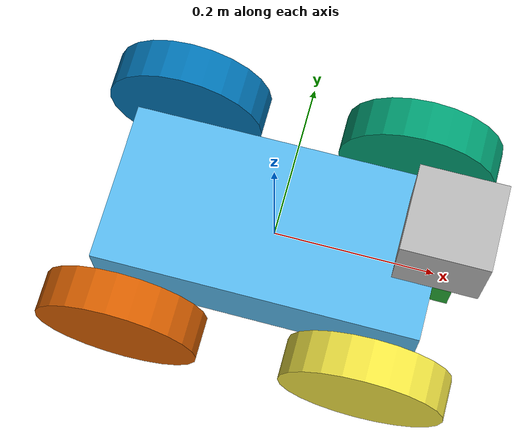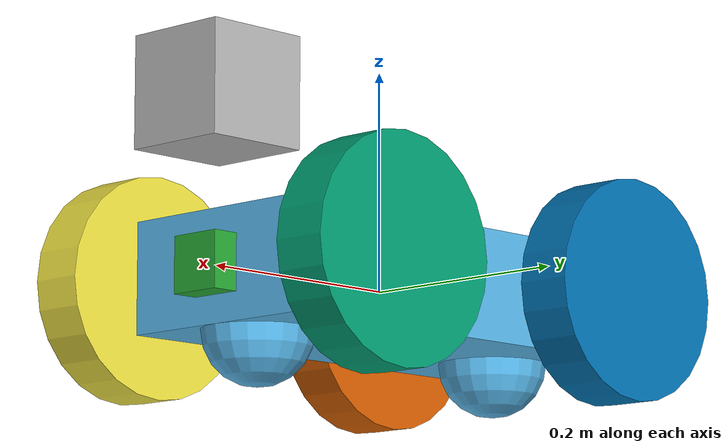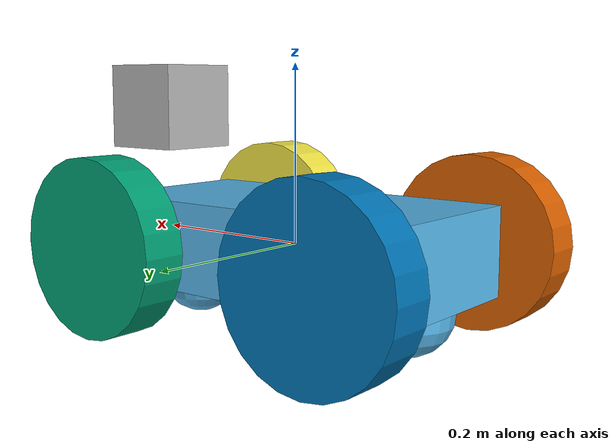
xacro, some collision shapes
<?xml version='1.0'?>
<robot name="udacity_bot_four_wheel"
  xmlns:xacro="http://www.ros.org/wiki/xacro">
  <xacro:include filename="$(find udacity_bot)/urdf/udacity_bot.gazebo" />
  <link name="robot_footprint"></link>
  <joint name="robot_footprint_joint" type="fixed">
    <origin xyz="0 0 0" rpy="0 0 0" />
    <parent link="robot_footprint"/>
    <child link="chassis" />
  </joint>
  <link name='chassis'>
    <pose>0 0 0.1 0 0 0</pose>
    <inertial>
      <mass value="50.0"/>
      <origin xyz="0.0 0 0" rpy=" 0 0 0"/>
      <inertia ixx="0.1" ixy="0" ixz="0" iyy="0.1" iyz="0" izz="0.1" />
    </inertial>
    <collision name='collision'>
      <origin xyz="0 0 0" rpy=" 0 0 0"/>
      <geometry>
        <box size=".4 .2 .1"/>
      </geometry>
    </collision>
    <visual name='chassis_visual'>
      <origin xyz="0 0 0" rpy=" 0 0 0"/>
      <geometry>
        <box size=".4 .2 .1"/>
      </geometry>
    </visual>
    <collision name='back_caster_collision'>
      <origin xyz="-0.15 0 -0.05" rpy=" 0 0 0"/>
      <geometry>
        <sphere radius="0.049"/>
      </geometry>
      <surface>
        <friction>
          <ode>
            <mu>0.1</mu>
            <mu2>0.1</mu2>
            <slip1>0.</slip1>
            <slip2>0.</slip2>
          </ode>
        </friction>
      </surface>
    </collision>
    <visual name='back_caster_visual'>
      <origin xyz="-0.15 0 -0.05" rpy=" 0 0 0"/>
      <geometry>
        <sphere radius="0.05"/>
      </geometry>
    </visual>
    <collision name='front_caster_collision'>
      <origin xyz="0.15 0 -0.05" rpy=" 0 0 0"/>
      <geometry>
        <sphere radius="0.049"/>
      </geometry>
      <surface>
        <friction>
          <ode>
            <mu>0.1</mu>
            <mu2>0.1</mu2>
            <slip1>0.0</slip1>
            <slip2>0.0</slip2>

          </ode>
        </friction>
      </surface>
    </collision>
    <visual name='front_caster_visual'>
      <origin xyz="0.15 0.0 -0.05" rpy=" 0 0 0"/>
      <geometry>
        <sphere radius="0.05"/>
      </geometry>
    </visual>
  </link>
  <link name="front_left_wheel">
    <inertial>
      <origin xyz="0.0 0.0 0.0" rpy="0.0 1.5707 1.5707" />
      <mass value="5.0"/>
      <inertia ixx="0.1" ixy="0" ixz="0" iyy="0.1" iyz="0" izz="0.1" />
    </inertial>
    <collision name='collision'>
      <origin xyz="0.0 0.0 0.0" rpy=" 0 1.5707 1.5707"/>
      <geometry>
        <cylinder radius="0.1" length="0.05"/>
      </geometry>
    </collision>
    <visual name="lef_wheel_visual">
      <origin xyz="0.0 0.0 0.0" rpy="0 1.5707 1.5707" />
      <geometry>
        <cylinder radius="0.1" length="0.05"/>
      </geometry>
    </visual>
  </link>
  <joint type="continuous" name="front_left_wheel_hinge">
    <origin xyz="0.15 0.15 0.0" rpy="0 0 0"/>
    <child link="front_left_wheel"/>
    <parent link="chassis"/>
    <axis xyz="0 1 0" rpy="0 0 0"/>
    <limit effort="10000" velocity="1000"/>
    <!-- increased damping to reduce the osscilations when robot stops getting acceleration -->
    <joint_properties damping="10.0" friction="1.0"/>
  </joint>
  <link name="front_right_wheel">
    <inertial>
      <origin xyz="0.0 0.0 0.0" rpy="0.0 1.5707 1.5707" />
      <mass value="5.0"/>
      <inertia ixx="0.1" ixy="0" ixz="0" iyy="0.1" iyz="0" izz="0.1" />
    </inertial>
    <collision name='collision'>
      <origin xyz="0.0 0.0 0.0" rpy=" 0 1.5707 1.5707"/>
      <geometry>
        <cylinder radius="0.1" length="0.05"/>
      </geometry>
    </collision>
    <visual name="right_wheel_visual">
      <origin xyz="0.0 0.0 0.0" rpy="0 1.5707 1.5707" />
      <geometry>
        <cylinder radius="0.1" length="0.05"/>
      </geometry>
    </visual>
  </link>
  <joint type="continuous" name="front_right_wheel_hinge">
    <origin xyz="0.15 -0.15 0.0" rpy="0 0 0"/>
    <child link="front_right_wheel"/>
    <parent link="chassis"/>
    <axis xyz="0 1 0" rpy="0 0 0"/>
    <limit effort="10000" velocity="1000"/>
    <!-- increased damping to reduce the osscilations when robot stops getting acceleration -->
    <joint_properties damping="10.0" friction="1.0"/>
  </joint>

  <link name="back_left_wheel">
    <inertial>
      <origin xyz="0.0 0.0 0.0" rpy="0.0 1.5707 1.5707" />
      <mass value="5.0"/>
      <inertia ixx="0.1" ixy="0" ixz="0" iyy="0.1" iyz="0" izz="0.1" />
    </inertial>
    <collision name='collision'>
      <origin xyz="0.0 0.0 0.0" rpy=" 0 1.5707 1.5707"/>
      <geometry>
        <cylinder radius="0.1" length="0.05"/>
      </geometry>
    </collision>
    <visual name="lef_wheel_visual">
      <origin xyz="0.0 0.0 0.0" rpy="0 1.5707 1.5707" />
      <geometry>
        <cylinder radius="0.1" length="0.05"/>
      </geometry>
    </visual>
  </link>
  <joint type="continuous" name="back_left_wheel_hinge">
    <origin xyz="-0.15 0.15 0.0" rpy="0 0 0"/>
    <child link="back_left_wheel"/>
    <parent link="chassis"/>
    <axis xyz="0 1 0" rpy="0 0 0"/>
    <limit effort="10000" velocity="1000"/>
    <!-- increased damping to reduce the osscilations when robot stops getting acceleration -->
    <joint_properties damping="10.0" friction="1.0"/>
  </joint>
  <link name="back_right_wheel">
    <inertial>
      <origin xyz="0.0 0.0 0.0" rpy="0.0 1.5707 1.5707" />
      <mass value="5.0"/>
      <inertia ixx="0.1" ixy="0" ixz="0" iyy="0.1" iyz="0" izz="0.1" />
    </inertial>
    <collision name='collision'>
      <origin xyz="0.0 0.0 0.0" rpy=" 0 1.5707 1.5707"/>
      <geometry>
        <cylinder radius="0.1" length="0.05"/>
      </geometry>
    </collision>
    <visual name="right_wheel_visual">
      <origin xyz="0.0 0.0 0.0" rpy="0 1.5707 1.5707" />
      <geometry>
        <cylinder radius="0.1" length="0.05"/>
      </geometry>
    </visual>
  </link>
  <joint type="continuous" name="back_right_wheel_hinge">
    <origin xyz="-0.15 -0.15 0.0" rpy="0 0 0"/>
    <child link="back_right_wheel"/>
    <parent link="chassis"/>
    <axis xyz="0 1 0" rpy="0 0 0"/>
    <limit effort="10000" velocity="1000"/>
    <!-- increased damping to reduce the osscilations when robot stops getting acceleration -->
    <joint_properties damping="10.0" friction="1.0"/>
  </joint>

<!--Camera-->
  <link name="camera">
    <origin>0 0 0 0 0 0</origin>
    <inertial>
      <origin xyz="0 0 0" rpy="0 0 0"/>
      <mass value ="0.1"/>
      <inertia ixx="1e-6" ixy="0" ixz="0" iyy="1e-6" iyz="0" izz="1e-6"/>
    </inertial>
    <collision name="collision">
      <origin xyz="0 0 0" rpy="0 0 0"/>
      <geometry>
        <box size="0.05 0.05 0.05" />
      </geometry>
    </collision>
    <visual>
      <origin xyz="0 0 0" rpy="0 0 0"/>
      <geometry>
        <box size="0.05 0.05 0.05" />
      </geometry>
    </visual>
  </link>
  <joint type="fixed" name="camera_joint">
    <origin xyz="0.2 0 0" />
    <child link="camera" />
    <parent link="chassis" />
  </joint>
<!--LIDAR-->
  <link name="hokuyo">
      <origin>0. 0 0 0 0 0</origin>
      <inertial>
        <origin xyz="0 0 0" rpy="0 0 0"/>
        <mass value ="0.1"/>
        <inertia ixx="1e-6" ixy="0" ixz="0" iyy="1e-6" iyz="0" izz="1e-6"/>
      </inertial>
      <collision name="collision">
        <origin xyz="0 0 0" rpy="0 0 0"/>
        <geometry>
          <box size="0.1 0.1 0.1" />
        </geometry>
      </collision>
      <visual>
        <geometry>
          <mesh filename="package://udacity_bot/meshes/hokuyo.dae" />
        </geometry>
      </visual>
  </link>
  <joint type="fixed" name="hokuyo_joint">
    <origin xyz="0.2 0 0.15" rpy="0 0 0"/>
    <child link="hokuyo" />
    <parent link="chassis" />
  </joint>

</robot>
